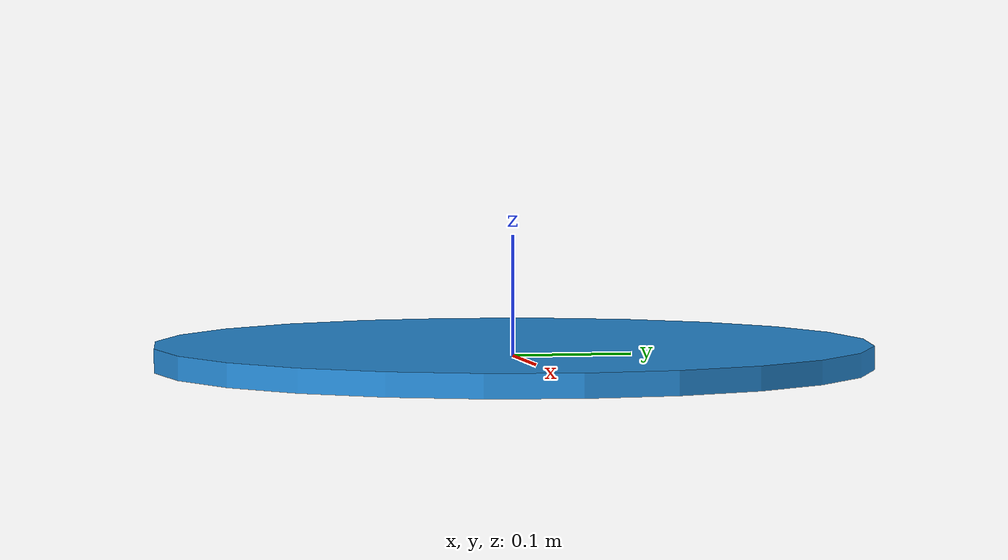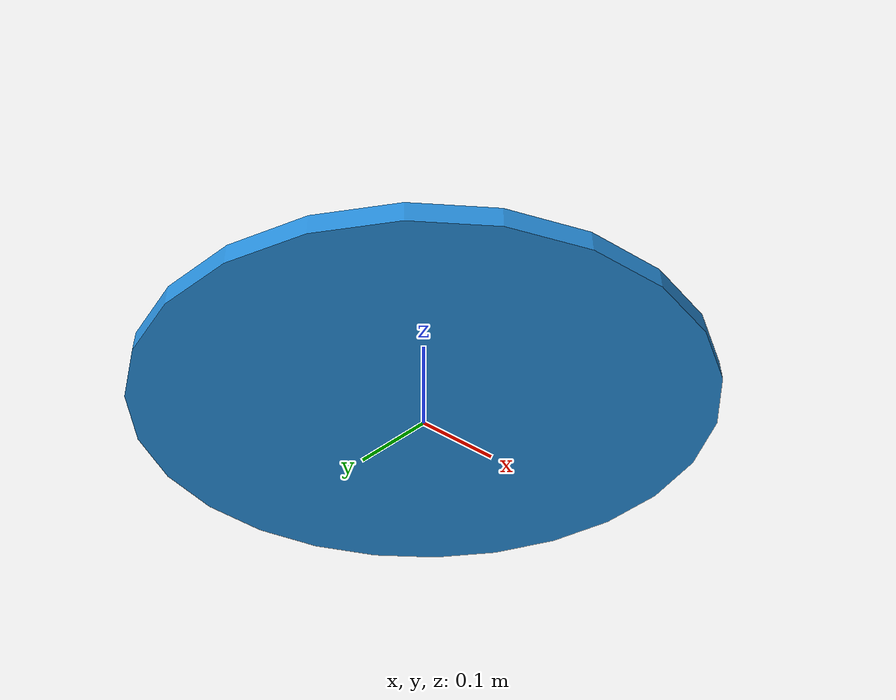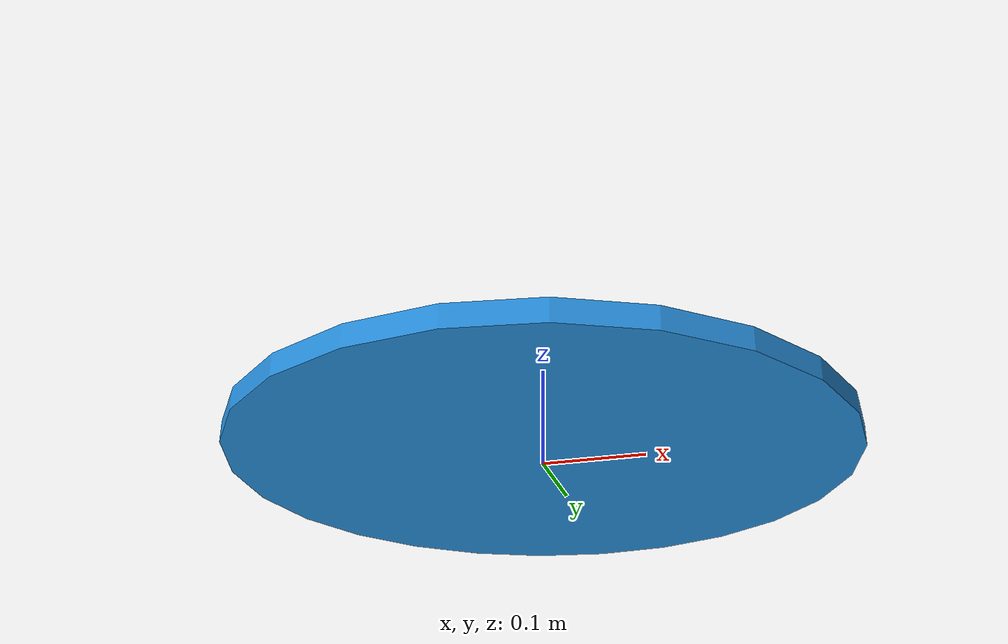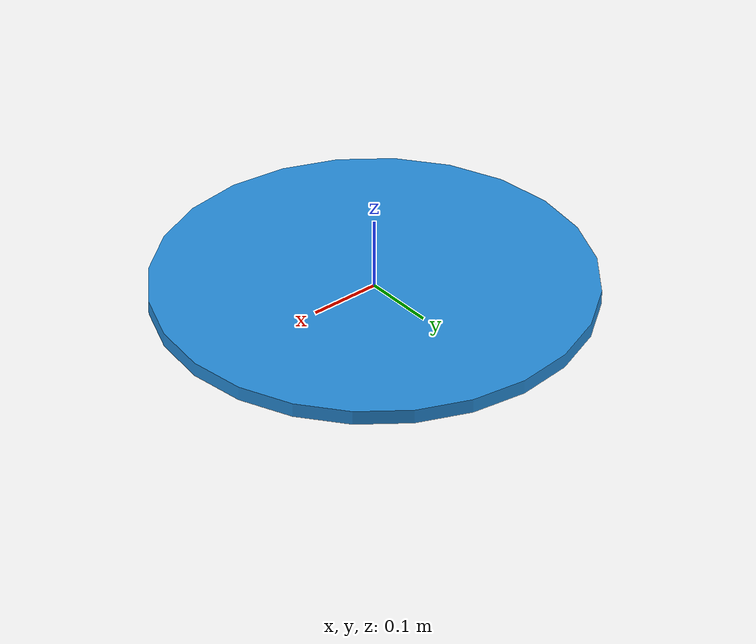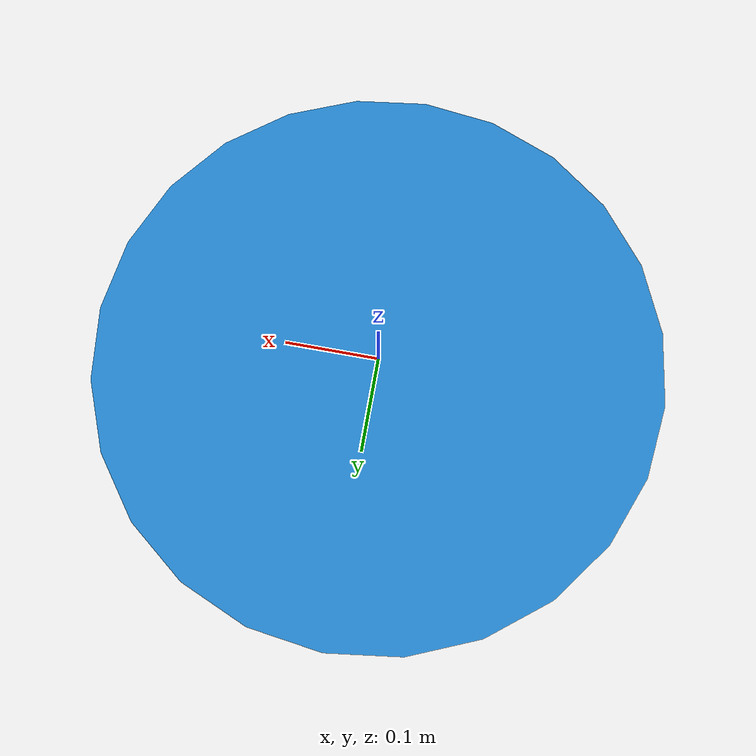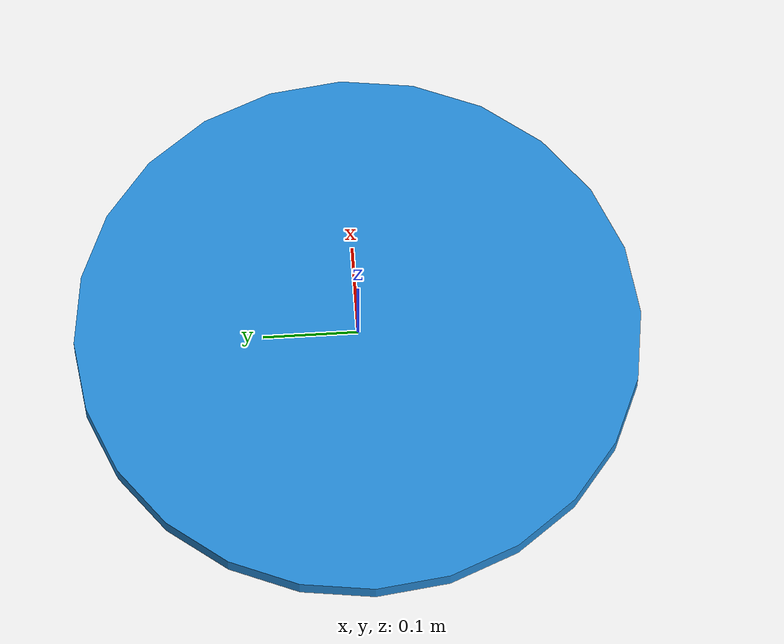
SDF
<?xml version="1.0" encoding="UTF-8"?>
<!-- funnel_flat —— 自动生成（tools/gen_funnel_cup.py）。独立实心平顶盘（静止），供物理测试。 -->
<sdf version='1.9'>
  <model name='funnel_flat'>
    <static>true</static>
    <link name="disk">
      <pose>0 0 0 0 0 0</pose>
      <inertial><mass>0.08</mass><inertia><ixx>4e-4</ixx><iyy>4e-4</iyy><izz>4e-4</izz>
        <ixy>0</ixy><ixz>0</ixz><iyz>0</iyz></inertia></inertial>
      <collision name="disk"><pose>0 0 0 0 0 0</pose>
        <geometry><cylinder><radius>0.30</radius><length>0.02</length></cylinder></geometry>
        <surface><friction><ode><mu>1.0</mu><mu2>1.0</mu2></ode></friction>
        <bounce><restitution_coefficient>0.05</restitution_coefficient></bounce></surface></collision>
      <visual name="disk_v"><pose>0 0 0 0 0 0</pose>
        <geometry><cylinder><radius>0.30</radius><length>0.02</length></cylinder></geometry>
        <material><ambient>0.15 0.55 0.85 1</ambient><diffuse>0.15 0.55 0.85 1</diffuse></material></visual>
    </link>
  </model>
</sdf>
